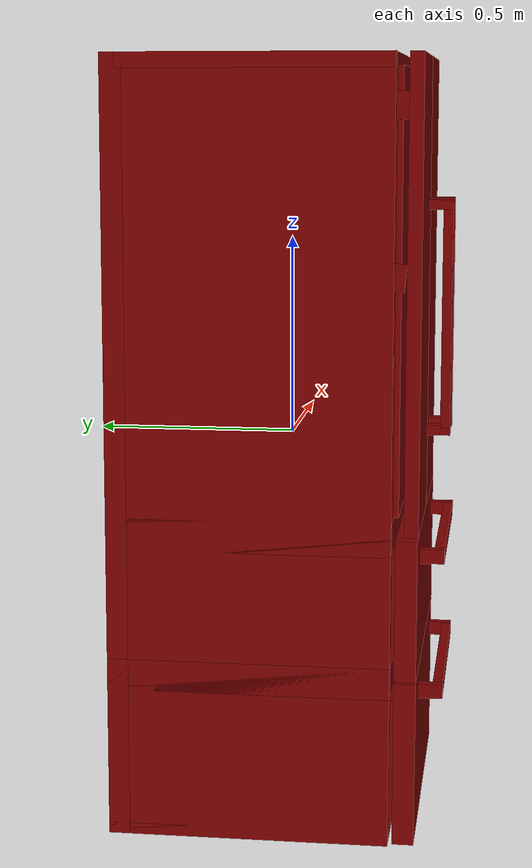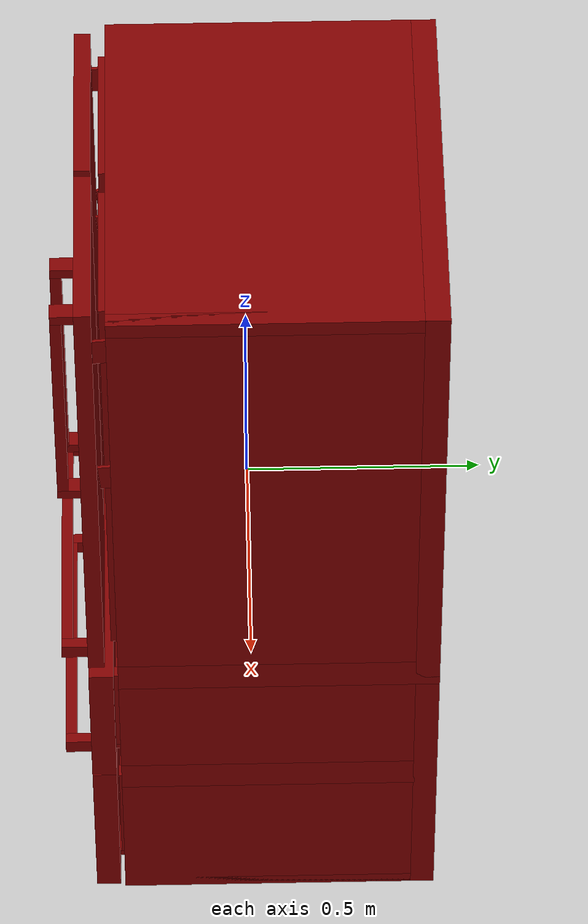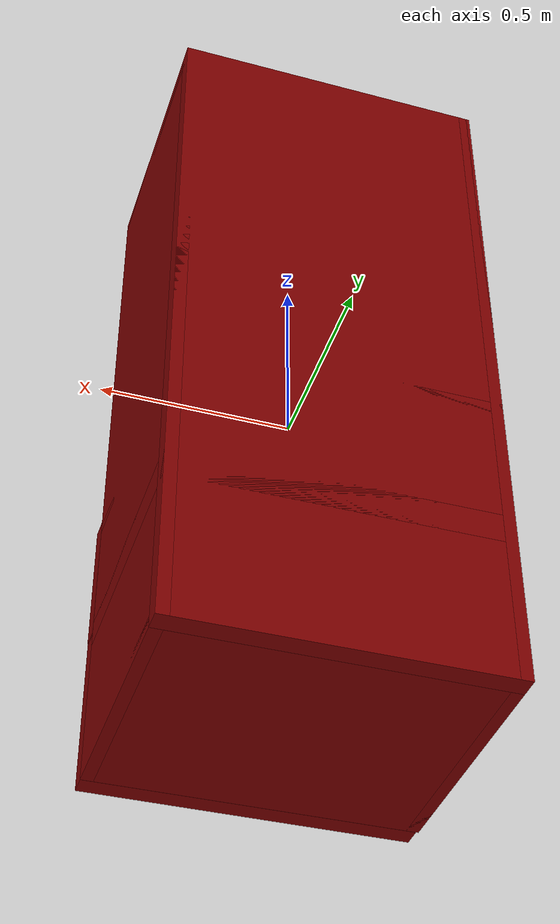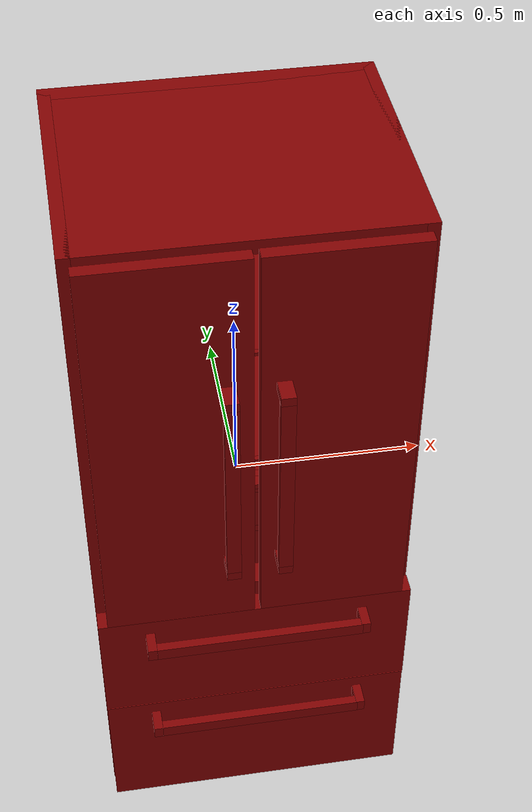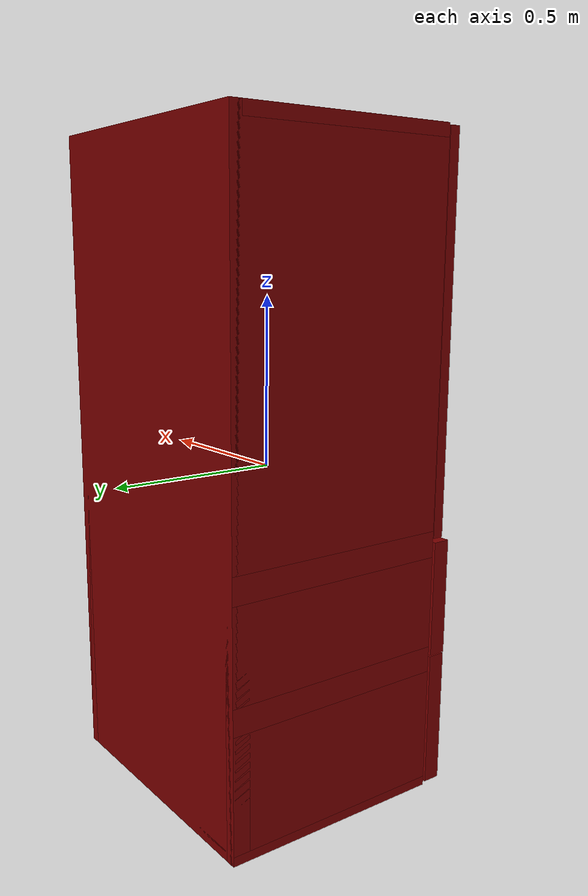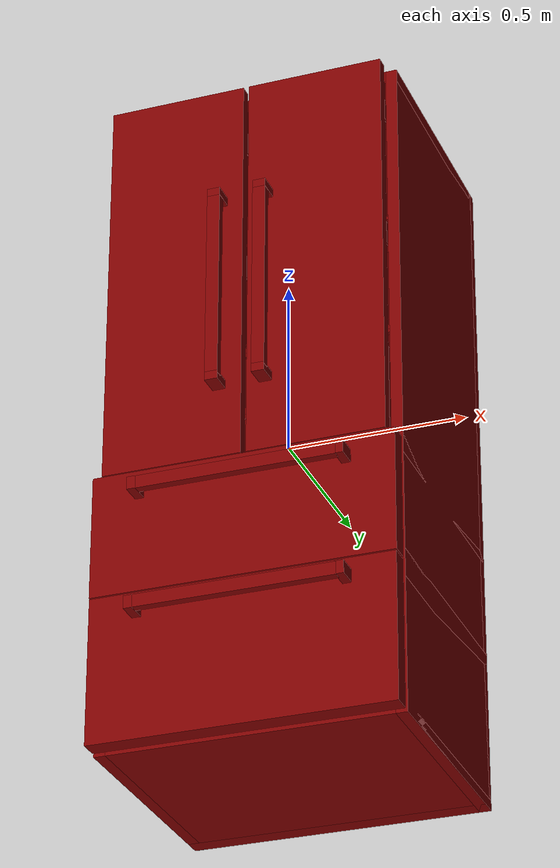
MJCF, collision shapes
<?xml version='1.0' encoding='UTF-8'?>
<mujoco model="model">
  <option timestep="0.002" gravity="0.0 0.0 -9.81"/>
  <compiler angle="radian"/>
  <asset>
    <mesh file="visuals/freezer0.obj" name="freezer0_vis"/>
    <mesh file="visuals/freezer1.obj" name="freezer1_vis"/>
    <mesh file="visuals/fridge_drawer0.obj" name="fridge_drawer0_vis"/>
    <mesh file="visuals/fridge_left_door.obj" name="fridge_left_door_vis"/>
    <mesh file="visuals/fridge_right_door.obj" name="fridge_right_door_vis"/>
    <mesh file="visuals/Body001.obj" name="Body001_vis"/>
    <mesh file="visuals/Body001_Clear.obj" name="Body001_Clear_vis"/>
    <texture file="visuals/T_BC001.png" name="Body001_material" type="2d"/>
    <material name="Body001_material" rgba="1 1 1 1.0" texture="Body001_material" shininess="0.141421377658844" specular="2"/>
    <texture file="visuals/T_BC001.png" name="freezer0_material" type="2d"/>
    <material name="freezer0_material" rgba="1 1 1 1.0" texture="freezer0_material" shininess="0.141421377658844" specular="2"/>
    <texture file="visuals/T_BC001.png" name="freezer1_material" type="2d"/>
    <material name="freezer1_material" rgba="1 1 1 1.0" texture="freezer1_material" shininess="0.141421377658844" specular="2"/>
    <texture file="visuals/T_BC001.png" name="fridge_drawer0_material" type="2d"/>
    <material name="fridge_drawer0_material" rgba="1 1 1 1.0" texture="fridge_drawer0_material" shininess="0.141421377658844" specular="0.3103448502657381"/>
    <texture file="visuals/T_BC001.png" name="fridge_left_door_material" type="2d"/>
    <material name="fridge_left_door_material" rgba="1 1 1 1.0" texture="fridge_left_door_material" shininess="0.141421377658844" specular="2"/>
    <texture file="visuals/T_BC001.png" name="fridge_right_door_material" type="2d"/>
    <material name="fridge_right_door_material" rgba="1 1 1 1.0" texture="fridge_right_door_material" shininess="0.141421377658844" specular="2"/>
    <texture file="visuals/T_BC001.png" name="Body001_Clear_material" type="2d"/>
    <material name="Body001_Clear_material" rgba="1 1 1 0.6563574075698853" texture="Body001_Clear_material" shininess="0.141421377658844" specular="0.3103448502657381"/>
  </asset>
  <default>
    <default class="visual">
      <geom conaffinity="0" contype="0" group="1" type="mesh"/>
    </default>
    <default class="collision">
      <geom group="0" rgba="0.5 0 0 0.5"/>
    </default>
    <default class="spawn">
      <geom group="0" rgba="1 1 1 0.5" contype="0" conaffinity="0"/>
      <site group="0" rgba="1 1 1 0.5"/>
    </default>
    <default class="region">
      <geom group="1" conaffinity="0" contype="0" rgba="0 1 0 0"/>
    </default>
  </default>
  <worldbody>
    <body>
      <body name="object">
        <geom mesh="Body001_vis" type="mesh" solimp="0.998 0.998 0.001" solref="0.001 1" friction="0.95 0.3 0.1" class="visual" material="Body001_material"/>
        <geom class="collision" type="box" pos="-9.453942766413093e-06 0.04303876310586929 0.9307692050933838" size="0.41651445627212524 0.3266557455062866 0.018230879679322243" quat="1.0 0.0 0.0 0.0"/>
        <geom class="collision" type="box" pos="-0.40069350600242615 0.06057019904255867 7.28759914636612e-08" size="0.01583033613860607 0.34419164061546326 0.9490000605583191" quat="1.0 0.0 0.0 0.0"/>
        <geom class="collision" type="box" pos="0.40072697401046753 0.060570307075977325 7.334165275096893e-08" size="0.015778014436364174 0.3441915512084961 0.9490000605583191" quat="1.0 0.0 0.0 0.0"/>
        <geom class="collision" type="box" pos="-9.453855454921722e-06 0.06057238206267357 -0.1907988339662552" size="0.41651445627212524 0.3441893458366394 0.03876152262091637" quat="1.0 0.0 0.0 0.0"/>
        <geom class="collision" type="box" pos="-9.453855454921722e-06 0.06057238578796387 -0.5415087938308716" size="0.41651445627212524 0.3441893458366394 0.03876152262091637" quat="1.0 0.0 0.0 0.0"/>
        <geom class="collision" type="box" pos="-9.453913662582636e-06 0.3788159489631653 1.6370904631912708e-08" size="0.41651445627212524 0.025945939123630524 0.9490001797676086" quat="1.0 0.0 0.0 0.0"/>
        <geom class="collision" type="box" pos="-7.514654862461612e-05 -0.1786998212337494 0.1949618011713028" size="0.3962385952472687 0.007086104713380337 0.004997356794774532" quat="1.0 0.0 0.0 0.0"/>
        <geom class="collision" type="box" pos="-7.514654862461612e-05 0.3251991271972656 0.19777925312519073" size="0.3962337374687195 0.014124590903520584 0.008046377450227737" quat="1.0 0.0 0.0 0.0"/>
        <geom class="collision" type="box" pos="-7.514654862461612e-05 -0.17802976071834564 0.5460891723632812" size="0.3962382972240448 0.0064160446636378765 0.004776493646204472" quat="1.0 0.0 0.0 0.0"/>
        <geom class="collision" type="box" pos="-7.514654862461612e-05 0.32541221380233765 0.5473220348358154" size="0.3962337374687195 0.013615122996270657 0.00804637186229229" quat="1.0 0.0 0.0 0.0"/>
        <geom class="collision" type="box" pos="-9.45392093854025e-06 0.0605740062892437 -0.9349794983863831" size="0.41651445627212524 0.34418773651123047 0.014020343311131" quat="1.0 0.0 0.0 0.0"/>
        <geom class="collision" type="box" pos="-1.4901161193847656e-08 0.06488131731748581 0.5457537770271301" size="0.3865223526954651 0.24918140470981598 0.004469543229788542" quat="1.0 0.0 0.0 0.0"/>
        <geom class="collision" type="box" pos="-1.4901161193847656e-08 0.06438498198986053 0.19469985365867615" size="0.3865223526954651 0.24967773258686066 0.0047000194899737835" quat="1.0 0.0 0.0 0.0"/>
        <body name="freezer0">
          <geom class="region" name="reg_freezer0" type="box" pos="-0.0004298090934753418 -0.02423986792564392 -0.7326073348522186" size="0.3401288220882416 0.25324968791007996 0.13339941000938416"/>
          <joint axis="0.0 -1.0 0.0" pos="3.433955498621799e-05 -0.07786884158849716 -0.7406875491142273" limited="true" name="freezer0_door_joint" range="0.0 0.45" type="slide" damping="1" frictionloss="1" armature=".01" stiffness="0.05"/>
          <geom mesh="freezer0_vis" type="mesh" solimp="0.998 0.998 0.001" solref="0.001 1" friction="0.95 0.3 0.1" class="visual" material="freezer0_material"/>
          <geom class="collision" type="box" pos="-0.0002168028149753809 -0.3203844428062439 -0.7408066391944885" size="0.4144551157951355 0.026357727125287056 0.20247718691825867" quat="1.0 0.0 0.0 0.0" name="freezer0_door_main"/>
          <geom class="collision" type="box" pos="0.00012974097626283765 0.24329261481761932 -0.7361201643943787" size="0.37471258640289307 0.0069942898117005825 0.14300502836704254" quat="1.0 0.0 0.0 0.0"/>
          <geom class="collision" type="box" pos="0.00012974097626283765 -0.022368889302015305 -0.8805960416793823" size="0.37471258640289307 0.2730328142642975 0.0074113504961133" quat="1.0 0.0 0.0 0.0"/>
          <geom class="collision" type="box" pos="-0.36141103506088257 -0.022249383851885796 -0.7444770336151123" size="0.014363876543939114 0.2730330526828766 0.15149712562561035" quat="1.0 0.0 0.0 0.0"/>
          <geom class="collision" type="box" pos="0.3604756295681 -0.021864015609025955 -0.7376111745834351" size="0.01421264000236988 0.2685966193675995 0.1443571299314499" quat="1.0 0.0 0.0 0.0"/>
          <geom class="collision" type="box" pos="0.0033083101734519005 -0.39476314187049866 -0.5915443897247314" size="0.273135244846344 0.012078536674380302 0.017848221585154533" quat="1.0 0.0 0.0 0.0" name="freezer0_door_handle_main"/>
          <geom class="collision" type="box" pos="0.2844117283821106 -0.37404027581214905 -0.5903908014297485" size="0.012078517116606236 0.03267950937151909 0.017848201096057892" quat="1.0 0.0 0.0 0.0" name="freezer0_door_handle_2"/>
          <geom class="collision" type="box" pos="-0.2820283770561218 -0.37582454085350037 -0.5918118357658386" size="0.012078517116606236 0.0312206894159317 0.017848201096057892" quat="1.0 0.0 0.0 0.0" name="freezer0_door_handle_1"/>
        </body>
        <body name="freezer1">
          <geom class="region" name="reg_freezer1" type="box" pos="-0.0001748204231262207 -0.024205081164836884 -0.35782647132873535" size="0.3419496247768402 0.25448783284425736 0.11573968625068665"/>
          <joint axis="0.0 -1.0 0.0" pos="3.435211328906007e-05 -0.07786884158849716 -0.36215198040008545" limited="true" name="freezer1_door_joint" range="0.0 0.45" type="slide" damping="1" frictionloss="1" armature=".01" stiffness="0.05"/>
          <geom mesh="freezer1_vis" type="mesh" solimp="0.998 0.998 0.001" solref="0.001 1" friction="0.95 0.3 0.1" class="visual" material="freezer1_material"/>
          <geom class="collision" type="box" pos="-0.00028591297450475395 -0.3203844428062439 -0.36151736974716187" size="0.4154416620731354 0.026357727125287056 0.17275455594062805" quat="1.0 0.0 0.0 0.0" name="freezer1_door_main"/>
          <geom class="collision" type="box" pos="0.00012974097626283765 0.24329259991645813 -0.3638662099838257" size="0.37471258640289307 0.006994298659265041 0.12748146057128906" quat="1.0 0.0 0.0 0.0"/>
          <geom class="collision" type="box" pos="0.00012974097626283765 -0.022368894889950752 -0.48587554693222046" size="0.37471258640289307 0.27303236722946167 0.006994354072958231" quat="1.0 0.0 0.0 0.0"/>
          <geom class="collision" type="box" pos="-0.36232349276542664 -0.02439247816801071 -0.36507585644721985" size="0.013574414886534214 0.27303269505500793 0.12869109213352203" quat="1.0 0.0 0.0 0.0"/>
          <geom class="collision" type="box" pos="0.3621633052825928 -0.022338716313242912 -0.3644840717315674" size="0.012579808942973614 0.2730327546596527 0.12809930741786957" quat="1.0 0.0 0.0 0.0"/>
          <geom class="collision" type="box" pos="0.003308311104774475 -0.39440271258354187 -0.2526620030403137" size="0.273135244846344 0.012078536674380302 0.017848221585154533" quat="1.0 0.0 0.0 0.0" name="freezer1_door_handle_main"/>
          <geom class="collision" type="box" pos="0.2844117283821106 -0.37367987632751465 -0.2515084147453308" size="0.012078517116606236 0.03267950937151909 0.017848201096057892" quat="1.0 0.0 0.0 0.0" name="freezer1_door_handle_2"/>
          <geom class="collision" type="box" pos="-0.2820283770561218 -0.37546414136886597 -0.25203949213027954" size="0.012078517116606236 0.0312206894159317 0.017848201096057892" quat="1.0 0.0 0.0 0.0" name="freezer1_door_handle_1"/>
        </body>
        <body name="fridge_drawer0">
          <geom class="region" name="reg_fridge_drawer0" type="box" pos="0.0008077919483184814 0.056071676313877106 0.011896930634975433" size="0.3300858864784241 0.25067800825834274 0.14055553621053696"/>
          <joint axis="0.0 -1.0 0.0" pos="0.00012135505676269531 0.038753941655159 0.013111468404531479" limited="true" name="fridge_drawer0_joint" range="0.0 0.45" type="slide" damping="1" frictionloss="1" armature=".01" stiffness="0.05"/>
          <geom mesh="fridge_drawer0_vis" type="mesh" solimp="0.998 0.998 0.001" solref="0.001 1" friction="0.95 0.3 0.1" class="visual" material="fridge_drawer0_material"/>
          <geom class="collision" type="box" pos="0.20977678894996643 -0.21116550266742706 0.015234965831041336" size="0.13499794900417328 0.010428235866129398 0.16391704976558685" quat="1.0 -8.146033536604591e-08 0.0 0.0"/>
          <geom class="collision" type="box" pos="0.0028727571479976177 -0.21116550266742706 0.01517876610159874" size="0.07190641760826111 0.010428210720419884 0.1639731526374817" quat="1.0 -8.146033536604591e-08 0.0 0.0"/>
          <geom class="collision" type="box" pos="-0.20499296486377716 -0.21116550266742706 0.015234965831041336" size="0.13595977425575256 0.010428239591419697 0.16391709446907043" quat="1.0 -8.146033536604591e-08 0.0 0.0"/>
          <geom class="collision" type="box" pos="0.002872738055884838 -0.2110261619091034 0.01189369522035122" size="0.07190626859664917 0.005427331663668156 0.033017948269844055" quat="0.9871617555618286 -0.1597236841917038 0.0 0.0"/>
          <geom class="collision" type="box" pos="0.00028893339913338423 0.0571049340069294 -0.13780926167964935" size="0.3400211036205292 0.26592400670051575 0.0032003079541027546" quat="1.0 -8.146033536604591e-08 0.0 0.0"/>
          <geom class="collision" type="box" pos="0.34015536308288574 0.05710494518280029 0.008308004587888718" size="0.0037448136135935783 0.265924334526062 0.149571493268013" quat="1.0 -8.146033536604591e-08 0.0 0.0"/>
          <geom class="collision" type="box" pos="-0.3390311002731323 0.05710494518280029 0.008308004587888718" size="0.004088167566806078 0.2659246027469635 0.14957177639007568" quat="1.0 -8.146033536604591e-08 0.0 0.0"/>
          <geom class="collision" type="box" pos="0.0037251850590109825 0.3267837166786194 0.008308004587888718" size="0.3400219976902008 0.003392026526853442 0.1495719701051712" quat="1.0 -8.146033536604591e-08 0.0 0.0"/>
          <geom class="collision" type="box" pos="0.0003397994441911578 -0.24762415885925293 0.15881609916687012" size="0.34305575489997864 0.005588192958384752 0.0061883386224508286" quat="7.549789415861596e-08 4.3711395392165286e-08 -8.146034247147327e-08 -1.0"/>
          <geom class="collision" type="box" pos="0.0003397994441911578 -0.23418964445590973 0.17167828977108002" size="0.34305575489997864 0.01889035291969776 0.007223935332149267" quat="7.549789415861596e-08 4.3711395392165286e-08 -8.146034247147327e-08 -1.0"/>
        </body>
        <body name="fridge_left_door">
          <joint axis="0.0 0.0 -1.0" pos="-0.38895824551582336 -0.3204922080039978 0.38153231143951416" limited="true" name="fridge_left_door_joint" range="0.0 1.5707963267948966" type="hinge" damping="1" frictionloss="1" armature=".01" stiffness="0.05"/>
          <geom mesh="fridge_left_door_vis" type="mesh" solimp="0.998 0.998 0.001" solref="0.001 1" friction="0.95 0.3 0.1" class="visual" material="fridge_left_door_material"/>
          <geom class="collision" type="box" pos="-0.197335347533226 -0.3300825357437134 0.3813619017601013" size="0.193319633603096 0.01708807609975338 0.5673006176948547" quat="1.0 0.0 0.0 0.0" name="fridge_left_door_main"/>
          <geom class="collision" type="box" pos="-0.1874624788761139 -0.29105421900749207 0.3871716856956482" size="0.165060892701149 0.006539436988532543 0.5325689911842346" quat="1.0 0.0 0.0 0.0"/>
          <geom class="collision" type="box" pos="-0.2034875750541687 -0.24546946585178375 0.8286693692207336" size="0.17405283451080322 0.00340099586173892 0.0340593047440052" quat="0.9986742734909058 0.05147518590092659 -1.1429785662452561e-17 -1.0844113904513637e-24"/>
          <geom class="collision" type="box" pos="-0.2034875750541687 -0.2619757354259491 0.797593891620636" size="0.17405283451080322 0.022372553125023842 0.003458016784861684" quat="1.0 0.0 0.0 0.0"/>
          <geom class="collision" type="box" pos="-0.37653809785842896 -0.2834589183330536 0.8297967314720154" size="0.03272543102502823 0.003400996560230851 0.043013185262680054" quat="0.47605523467063904 0.5228491425514221 -0.5216371417045593 0.47738340497016907"/>
          <geom class="collision" type="box" pos="-0.030863497406244278 -0.27152639627456665 0.8308865427970886" size="0.03272542729973793 0.003400996560230851 0.029008248820900917" quat="0.4760550260543823 0.5228493213653564 -0.5216370224952698 0.477383553981781"/>
          <geom class="collision" type="box" pos="-0.2034875750541687 -0.24546946585178375 0.43134674429893494" size="0.17405283451080322 0.00340099586173892 0.0340593047440052" quat="0.9986742734909058 0.05147518590092659 -1.1429785662452561e-17 -1.0844113904513637e-24"/>
          <geom class="collision" type="box" pos="-0.2034875750541687 -0.2619757354259491 0.4002712666988373" size="0.17405283451080322 0.022372543811798096 0.003458016784861684" quat="1.0 0.0 0.0 0.0"/>
          <geom class="collision" type="box" pos="-0.3765566945075989 -0.2761935293674469 0.4331376850605011" size="0.03272542729973793 0.003400996560230851 0.03316066041588783" quat="0.47605422139167786 0.5228500366210938 -0.5216361880302429 0.47738441824913025"/>
          <geom class="collision" type="box" pos="-0.0308820977807045 -0.26426100730895996 0.43422749638557434" size="0.03272542357444763 0.003400996793061495 0.02236367203295231" quat="0.476055383682251 0.5228489637374878 -0.5216372609138489 0.47738325595855713"/>
          <geom class="collision" type="box" pos="-0.06463170051574707 -0.39542877674102783 0.30248695611953735" size="0.017848199233412743 0.012078516185283661 0.273135244846344" quat="1.0 0.0 0.0 0.0" name="fridge_left_door_handle_main"/>
          <geom class="collision" type="box" pos="-0.06463170051574707 -0.3747059404850006 0.5866884589195251" size="0.017848199233412743 0.03267950937151909 0.012078518979251385" quat="1.0 0.0 0.0 0.0" name="fridge_left_door_handle_2"/>
          <geom class="collision" type="box" pos="-0.06463170051574707 -0.37649020552635193 0.02285877801477909" size="0.017848199233412743 0.0312206894159317 0.012078518979251385" quat="1.0 0.0 0.0 0.0" name="fridge_left_door_handle_1"/>
        </body>
        <body name="fridge_right_door">
          <joint axis="0.0 0.0 1.0" pos="0.3891085982322693 -0.31980806589126587 0.38152801990509033" limited="true" name="fridge_right_door_joint" range="0.0 1.5707963267948966" type="hinge" damping="1" frictionloss="1" armature=".01" stiffness="0.05"/>
          <geom mesh="fridge_right_door_vis" type="mesh" solimp="0.998 0.998 0.001" solref="0.001 1" friction="0.95 0.3 0.1" class="visual" material="fridge_right_door_material"/>
          <geom class="collision" type="box" pos="0.20094357430934906 -0.32973188161849976 0.38135388493537903" size="0.18959581851959229 0.017438681796193123 0.5675516724586487" quat="1.0 0.0 0.0 0.0" name="fridge_right_door_main"/>
          <geom class="collision" type="box" pos="0.1903121918439865 -0.29105421900749207 0.3871716856956482" size="0.1607256680727005 0.0065393634140491486 0.5325640439987183" quat="1.0 0.0 0.0 0.0"/>
          <geom class="collision" type="box" pos="0.2095467448234558 -0.24546946585178375 0.8286693692207336" size="0.16922004520893097 0.00340099586173892 0.0340593047440052" quat="0.9986742734909058 0.05147518590092659 -1.1429785662452561e-17 -1.0844113904513637e-24"/>
          <geom class="collision" type="box" pos="0.2095467448234558 -0.2619757354259491 0.797593891620636" size="0.16922004520893097 0.02237251214683056 0.003458016784861684" quat="1.0 0.0 0.0 0.0"/>
          <geom class="collision" type="box" pos="0.04130066558718681 -0.2724044919013977 0.8308063745498657" size="0.03272542729973793 0.003400996560230851 0.029008248820900917" quat="0.4760550260543823 0.5228493213653564 -0.5216370224952698 0.477383553981781"/>
          <geom class="collision" type="box" pos="0.3771306276321411 -0.28258079290390015 0.8298768997192383" size="0.03272543102502823 0.003400996560230851 0.043013185262680054" quat="0.47605523467063904 0.5228491425514221 -0.5216371417045593 0.47738340497016907"/>
          <geom class="collision" type="box" pos="0.2095467448234558 -0.24546946585178375 0.4360523819923401" size="0.16922004520893097 0.00340099586173892 0.0340593047440052" quat="0.9986742734909058 0.05147518590092659 -1.1429785662452561e-17 -1.0844113904513637e-24"/>
          <geom class="collision" type="box" pos="0.2095467448234558 -0.2619757354259491 0.40497690439224243" size="0.16922004520893097 0.022372502833604813 0.003458016784861684" quat="1.0 0.0 0.0 0.0"/>
          <geom class="collision" type="box" pos="0.04128206521272659 -0.265139102935791 0.4388529658317566" size="0.03272542357444763 0.003400996793061495 0.02236367203295231" quat="0.476055383682251 0.5228489637374878 -0.5216372609138489 0.47738325595855713"/>
          <geom class="collision" type="box" pos="0.37786316871643066 -0.27531540393829346 0.43792349100112915" size="0.03272542729973793 0.003400996560230851 0.03316066041588783" quat="0.47605422139167786 0.5228500366210938 -0.5216361880302429 0.47738441824913025"/>
          <geom class="collision" type="box" pos="0.06506678462028503 -0.39542877674102783 0.30248695611953735" size="0.017848199233412743 0.012078516185283661 0.273135244846344" quat="1.0 0.0 0.0 0.0" name="fridge_right_door_handle_main"/>
          <geom class="collision" type="box" pos="0.06506678462028503 -0.3747059404850006 0.5866884589195251" size="0.017848199233412743 0.03267950937151909 0.012078518979251385" quat="1.0 0.0 0.0 0.0" name="fridge_right_door_handle_1"/>
          <geom class="collision" type="box" pos="0.06506678462028503 -0.37649020552635193 0.02285877801477909" size="0.017848199233412743 0.0312206894159317 0.012078518979251385" quat="1.0 0.0 0.0 0.0" name="fridge_right_door_handle_2"/>
        </body>
        <body name="Body001_Clear">
          <geom mesh="Body001_Clear_vis" type="mesh" solimp="0.998 0.998 0.001" solref="0.001 1" friction="0.95 0.3 0.1" class="visual" material="Body001_Clear_material"/>
          <geom class="collision" type="box" pos="-1.4901161193847656e-08 0.06488131731748581 0.5457537770271301" size="0.3865223526954651 0.24918140470981598 0.004469543229788542" quat="1.0 0.0 0.0 0.0"/>
          <geom class="collision" type="box" pos="-1.4901161193847656e-08 0.06438498198986053 0.19469985365867615" size="0.3865223526954651 0.24967773258686066 0.0047000194899737835" quat="1.0 0.0 0.0 0.0"/>
        </body>
        <geom class="region" name="reg_fridge_shelf0" type="box" pos="0.00011613965034484863 0.06360956281423569 0.37055525183677673" size="0.37881497836112976 0.24269782549142838 0.16544054245948792"/>
        <geom class="region" name="reg_fridge_shelf1" type="box" pos="8.463859558105469e-05 0.06360956281423569 0.7312119603157043" size="0.3787642846107483 0.24269782549142838 0.17521197891235352"/>
        <geom class="region" name="reg_main" type="box" pos="0.0 0.028792425990104675 2.9802322387695312e-08" size="0.4175242910385132 0.3769693503379822 0.9500001201629639"/>
      </body>
    </body>
  </worldbody>
  <actuator>
    <motor name="freezer0_door_joint_actuator" joint="freezer0_door_joint" gear="50"/>
    <motor name="freezer1_door_joint_actuator" joint="freezer1_door_joint" gear="50"/>
    <motor name="fridge_drawer0_joint_actuator" joint="fridge_drawer0_joint" gear="50"/>
    <motor name="fridge_left_door_joint_actuator" joint="fridge_left_door_joint" gear="50"/>
    <motor name="fridge_right_door_joint_actuator" joint="fridge_right_door_joint" gear="50"/>
  </actuator>
</mujoco>
